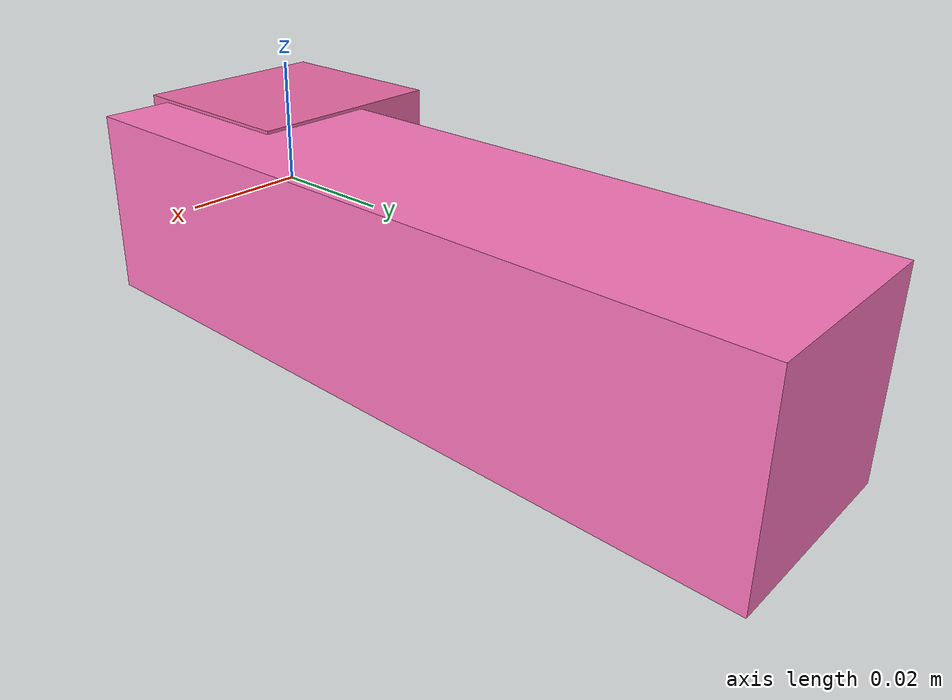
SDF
<sdf version="1.4"><world name="default"><model name="object0"><link name="link1"><pose>0 0 0 0 0 0</pose><inertial><pose>0 0 0 0 0 0</pose><mass>0.01739404005693793</mass><inertia><ixx>2.6091060085406894e-06</ixx><ixy>0</ixy><iyy>2.808500351348526e-06</iyy><ixz>0</ixz><iyz>0</iyz><izz>2.808500351348526e-06</izz></inertia></inertial><visual name="link1_visual"><pose>0 0  0 0 0 0</pose><geometry><box><size>0.0322111852906258 0.03 0.03</size></box></geometry><material><diffuse>0.9265746289346757 0.41474196832000515 0.650326561793412 1</diffuse></material></visual><collision><pose>0 0  0 0 0 0</pose><geometry><box><size>0.0322111852906258 0.03 0.03</size></box></geometry></collision></link><link name="link2"><pose>0.01223996670775395 0.04515714878948999 0 0 0 0</pose><inertial><pose>0 0 0 0 0 0</pose><mass>0.0605817667852961</mass><inertia><ixx>6.77872100980144e-05</ixx><ixy>0</ixy><iyy>8.789404664433374e-06</iyy><ixz>0</ixz><iyz>0</iyz><izz>6.808507045137544e-05</izz></inertia></inertial><visual name="link2_visual"><pose>0 0  0 0 0 0</pose><geometry><box><size>0.03 0.11218845700980759 0.028999999999999998</size></box></geometry><material><diffuse>0.9836577452228332 0.4599306545487305 0.7312582691940692 1</diffuse></material></visual><collision><pose>0 0  0 0 0 0</pose><geometry><box><size>0.03 0.11218845700980759 0.028999999999999998</size></box></geometry></collision></link><joint name="link_joint_0" type="fixed"><parent>link1</parent><child>link2</child><pose>0 0 0 0 0 0</pose><axis><xyz>0 0 1</xyz></axis></joint></model></world></sdf>
